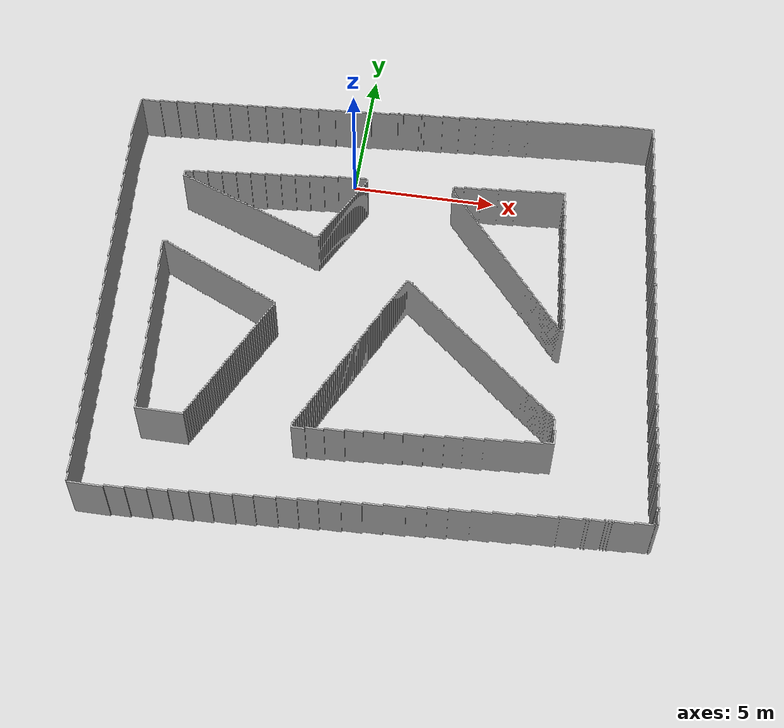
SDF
<?xml version='1.0'?>
<sdf version='1.7'>
  <model name="lobby_tv">
    <link name="lobby_wall">
      <inertial>
        <mass>420</mass>
        <inertia>
          <ixx>0.0</ixx>
          <ixy>0.0</ixy>
          <ixz>0.0</ixz>
          <iyy>0.0</iyy>
          <iyz>0.0</iyz>
          <izz>0.0</izz>
        </inertia>
      </inertial>
      <collision name="collision">
        <pose>0 0 0 0 0 0</pose>
        <geometry>
          <mesh>
            <uri>model://new_lobby/meshes/map.stl</uri>
          </mesh>
        </geometry>
      </collision>
      <visual name="visual">
        <pose>0 0 0 0 0 0</pose>
        <geometry>
          <mesh>
            <uri>model://new_lobby/meshes/map.stl</uri>
          </mesh>
        </geometry>
      </visual>
    </link>
    <static>1</static>
  </model>
</sdf>
